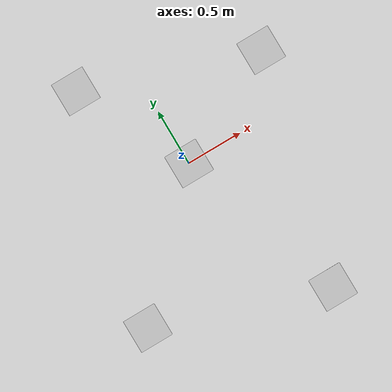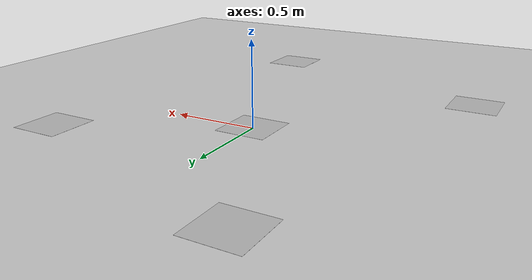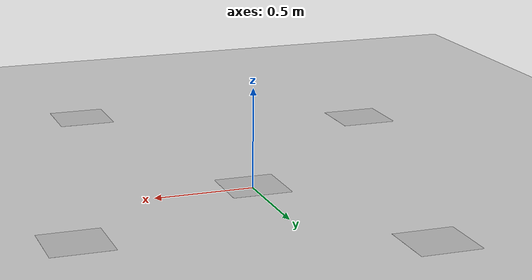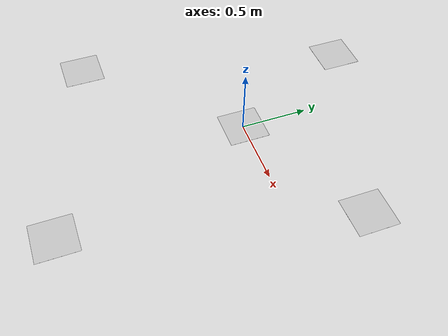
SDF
<?xml version="1.0" ?>
<sdf version="1.6">
  <world name="aruco_flat_world">

    <include>
      <uri>model://sun</uri>
    </include>

    <include>
      <uri>model://ground_plane</uri>
    </include>

    <model name="aruco_marker_0">
      <static>true</static>
      <pose>0 0 0.01 0 0 0</pose>
      <link name="marker_link">
        <visual name="visual">
          <geometry>
            <plane>
              <size>0.3 0.3</size>
            </plane>
          </geometry>
          <material>
            <script>
              <uri>model://robot_simulation/textures/</uri>
              <name>marker_0</name>
            </script>
          </material>
        </visual>
      </link>
    </model>

    <model name="aruco_marker_1">
      <static>true</static>
      <pose>1.0 0.5 0.01 0 0 0</pose>
      <link name="marker_link">
        <visual name="visual">
          <geometry>
            <plane>
              <size>0.3 0.3</size>
            </plane>
          </geometry>
          <material>
            <script>
              <uri>model://robot_simulation/textures/</uri>
              <name>marker_1</name>
            </script>
          </material>
        </visual>
      </link>
    </model>

    <model name="aruco_marker_2">
      <static>true</static>
      <pose>-1.0 -1.0 0.01 0 0 0</pose>
      <link name="marker_link">
        <visual name="visual">
          <geometry>
            <plane>
              <size>0.3 0.3</size>
            </plane>
          </geometry>
          <material>
            <script>
              <uri>model://robot_simulation/textures/</uri>
              <name>marker_2</name>
            </script>
          </material>
        </visual>
      </link>
    </model>

    <model name="aruco_marker_3">
      <static>true</static>
      <pose>0.5 -1.5 0.01 0 0 0</pose>
      <link name="marker_link">
        <visual name="visual">
          <geometry>
            <plane>
              <size>0.3 0.3</size>
            </plane>
          </geometry>
          <material>
            <script>
              <uri>model://robot_simulation/textures/</uri>
              <name>marker_3</name>
            </script>
          </material>
        </visual>
      </link>
    </model>

    <model name="aruco_marker_4">
      <static>true</static>
      <pose>-0.5 1.0 0.01 0 0 0</pose>
      <link name="marker_link">
        <visual name="visual">
          <geometry>
            <plane>
              <size>0.3 0.3</size>
            </plane>
          </geometry>
          <material>
            <script>
              <uri>model://robot_simulation/textures/</uri>
              <name>marker_4</name>
            </script>
          </material>
        </visual>
      </link>
    </model>

  </world>
</sdf>
